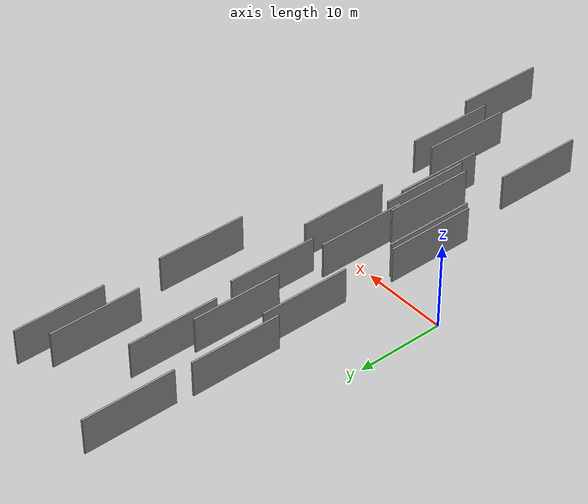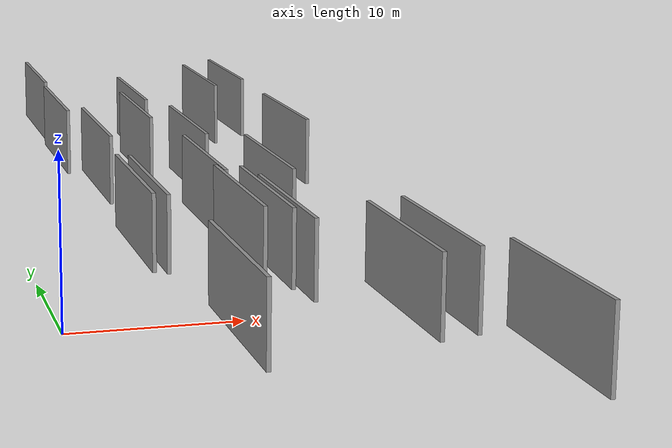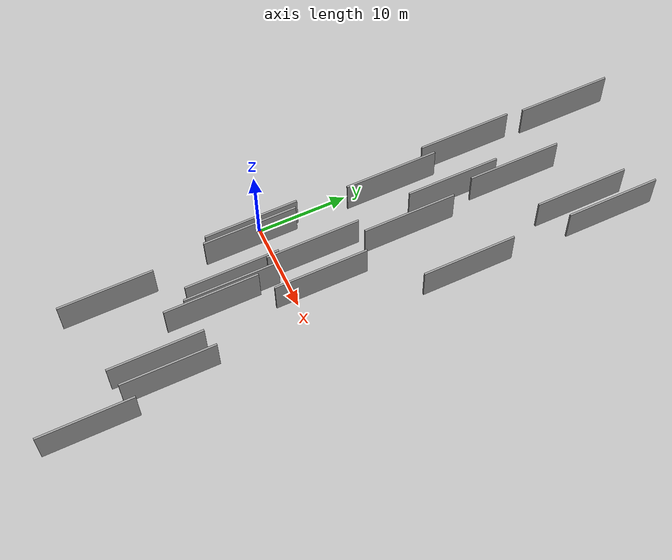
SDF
<sdf version="1.6">
 <world name="default">
  <scene>
   <sky><clouds><speed>12</speed></clouds></sky>
   <ambient>0.4 0.4 0.4 1</ambient>
   <background>0.7 0.7 0.7 1</background>
   <shadows>1</shadows>
  </scene>
  <gravity>0 0 -9.8066</gravity>
  <magnetic_field>6e-06 2.3e-05 -4.2e-05</magnetic_field>
  <physics default="0" name="default_physics" type="ode">
   <ode>
    <solver>
     <type>quick</type>
     <iters>10</iters>
     <sor>1.0</sor>
     <use_dynamic_moi_rescaling>0</use_dynamic_moi_rescaling>
    </solver>
    <constraints>
     <cfm>0</cfm>
     <erp>0.2</erp>
     <contact_max_correcting_vel>100</contact_max_correcting_vel>
     <contact_surface_layer>0.001</contact_surface_layer>
    </constraints>
   </ode>
   <max_step_size>0.004</max_step_size>
   <real_time_factor>1</real_time_factor>
   <real_time_update_rate>250</real_time_update_rate>
  </physics>
  <light name="sun" type="directional">
   <pose>0 0 10 0 0 0</pose>
   <diffuse>0.8 0.8 0.8 1</diffuse>
   <specular>0.2 0.2 0.2 1</specular>
   <attenuation>
    <range>1000</range>
    <constant>0.9</constant>
    <linear>0.01</linear>
    <quadratic>0.001</quadratic>
   </attenuation>
   <direction>-0.5 0.1 -0.9</direction>
  </light>
  <model name="grey_wall_1">
   <static>1</static>
   <pose>9.7893 12.7815 5.0 0.000000 0.000000 1.570796</pose>
   <link name="link">
    <pose>0 0 2.00 0 0 0</pose>
    <collision name="collision"><geometry><box><size>10.00 0.2 4.00</size></box></geometry></collision>
    <visual name="visual">
     <cast_shadows>0</cast_shadows>
     <geometry><box><size>10.00 0.2 4.00</size></box></geometry>
     <material>
      <script>
       <uri>model://grey_wall/materials/scripts</uri>
       <uri>model://grey_wall/materials/textures</uri>
       <name>vrc/grey_wall</name>
      </script>
     </material>
    </visual>
   </link>
  </model>
  <model name="grey_wall_2">
   <static>1</static>
   <pose>9.3896 -6.5230 5.0 0.000000 0.000000 1.570796</pose>
   <link name="link">
    <pose>0 0 2.00 0 0 0</pose>
    <collision name="collision"><geometry><box><size>10.00 0.2 4.00</size></box></geometry></collision>
    <visual name="visual">
     <cast_shadows>0</cast_shadows>
     <geometry><box><size>10.00 0.2 4.00</size></box></geometry>
     <material>
      <script>
       <uri>model://grey_wall/materials/scripts</uri>
       <uri>model://grey_wall/materials/textures</uri>
       <name>vrc/grey_wall</name>
      </script>
     </material>
    </visual>
   </link>
  </model>
  <model name="grey_wall_3">
   <static>1</static>
   <pose>3.4801 34.1478 5.0 0.000000 0.000000 1.570796</pose>
   <link name="link">
    <pose>0 0 2.00 0 0 0</pose>
    <collision name="collision"><geometry><box><size>10.00 0.2 4.00</size></box></geometry></collision>
    <visual name="visual">
     <cast_shadows>0</cast_shadows>
     <geometry><box><size>10.00 0.2 4.00</size></box></geometry>
     <material>
      <script>
       <uri>model://grey_wall/materials/scripts</uri>
       <uri>model://grey_wall/materials/textures</uri>
       <name>vrc/grey_wall</name>
      </script>
     </material>
    </visual>
   </link>
  </model>
  <model name="grey_wall_4">
   <static>1</static>
   <pose>3.6073 -1.9152 5.0 0.000000 0.000000 1.570796</pose>
   <link name="link">
    <pose>0 0 2.00 0 0 0</pose>
    <collision name="collision"><geometry><box><size>10.00 0.2 4.00</size></box></geometry></collision>
    <visual name="visual">
     <cast_shadows>0</cast_shadows>
     <geometry><box><size>10.00 0.2 4.00</size></box></geometry>
     <material>
      <script>
       <uri>model://grey_wall/materials/scripts</uri>
       <uri>model://grey_wall/materials/textures</uri>
       <name>vrc/grey_wall</name>
      </script>
     </material>
    </visual>
   </link>
  </model>
  <model name="grey_wall_5">
   <static>1</static>
   <pose>8.4005 2.7247 5.0 0.000000 0.000000 1.570796</pose>
   <link name="link">
    <pose>0 0 2.00 0 0 0</pose>
    <collision name="collision"><geometry><box><size>10.00 0.2 4.00</size></box></geometry></collision>
    <visual name="visual">
     <cast_shadows>0</cast_shadows>
     <geometry><box><size>10.00 0.2 4.00</size></box></geometry>
     <material>
      <script>
       <uri>model://grey_wall/materials/scripts</uri>
       <uri>model://grey_wall/materials/textures</uri>
       <name>vrc/grey_wall</name>
      </script>
     </material>
    </visual>
   </link>
  </model>
  <model name="grey_wall_6">
   <static>1</static>
   <pose>16.9744 32.1979 5.0 0.000000 0.000000 1.570796</pose>
   <link name="link">
    <pose>0 0 2.00 0 0 0</pose>
    <collision name="collision"><geometry><box><size>10.00 0.2 4.00</size></box></geometry></collision>
    <visual name="visual">
     <cast_shadows>0</cast_shadows>
     <geometry><box><size>10.00 0.2 4.00</size></box></geometry>
     <material>
      <script>
       <uri>model://grey_wall/materials/scripts</uri>
       <uri>model://grey_wall/materials/textures</uri>
       <name>vrc/grey_wall</name>
      </script>
     </material>
    </visual>
   </link>
  </model>
  <model name="grey_wall_7">
   <static>1</static>
   <pose>3.2066 22.4412 5.0 0.000000 0.000000 1.570796</pose>
   <link name="link">
    <pose>0 0 2.00 0 0 0</pose>
    <collision name="collision"><geometry><box><size>10.00 0.2 4.00</size></box></geometry></collision>
    <visual name="visual">
     <cast_shadows>0</cast_shadows>
     <geometry><box><size>10.00 0.2 4.00</size></box></geometry>
     <material>
      <script>
       <uri>model://grey_wall/materials/scripts</uri>
       <uri>model://grey_wall/materials/textures</uri>
       <name>vrc/grey_wall</name>
      </script>
     </material>
    </visual>
   </link>
  </model>
  <model name="grey_wall_8">
   <static>1</static>
   <pose>9.7941 -8.7824 5.0 0.000000 0.000000 1.570796</pose>
   <link name="link">
    <pose>0 0 2.00 0 0 0</pose>
    <collision name="collision"><geometry><box><size>10.00 0.2 4.00</size></box></geometry></collision>
    <visual name="visual">
     <cast_shadows>0</cast_shadows>
     <geometry><box><size>10.00 0.2 4.00</size></box></geometry>
     <material>
      <script>
       <uri>model://grey_wall/materials/scripts</uri>
       <uri>model://grey_wall/materials/textures</uri>
       <name>vrc/grey_wall</name>
      </script>
     </material>
    </visual>
   </link>
  </model>
  <model name="grey_wall_9">
   <static>1</static>
   <pose>14.5233 29.9534 5.0 0.000000 0.000000 1.570796</pose>
   <link name="link">
    <pose>0 0 2.00 0 0 0</pose>
    <collision name="collision"><geometry><box><size>10.00 0.2 4.00</size></box></geometry></collision>
    <visual name="visual">
     <cast_shadows>0</cast_shadows>
     <geometry><box><size>10.00 0.2 4.00</size></box></geometry>
     <material>
      <script>
       <uri>model://grey_wall/materials/scripts</uri>
       <uri>model://grey_wall/materials/textures</uri>
       <name>vrc/grey_wall</name>
      </script>
     </material>
    </visual>
   </link>
  </model>
  <model name="grey_wall_10">
   <static>1</static>
   <pose>16.9770 -24.3472 5.0 0.000000 0.000000 1.570796</pose>
   <link name="link">
    <pose>0 0 2.00 0 0 0</pose>
    <collision name="collision"><geometry><box><size>10.00 0.2 4.00</size></box></geometry></collision>
    <visual name="visual">
     <cast_shadows>0</cast_shadows>
     <geometry><box><size>10.00 0.2 4.00</size></box></geometry>
     <material>
      <script>
       <uri>model://grey_wall/materials/scripts</uri>
       <uri>model://grey_wall/materials/textures</uri>
       <name>vrc/grey_wall</name>
      </script>
     </material>
    </visual>
   </link>
  </model>
  <model name="grey_wall_11">
   <static>1</static>
   <pose>15.1796 -15.4007 5.0 0.000000 0.000000 1.570796</pose>
   <link name="link">
    <pose>0 0 2.00 0 0 0</pose>
    <collision name="collision"><geometry><box><size>10.00 0.2 4.00</size></box></geometry></collision>
    <visual name="visual">
     <cast_shadows>0</cast_shadows>
     <geometry><box><size>10.00 0.2 4.00</size></box></geometry>
     <material>
      <script>
       <uri>model://grey_wall/materials/scripts</uri>
       <uri>model://grey_wall/materials/textures</uri>
       <name>vrc/grey_wall</name>
      </script>
     </material>
    </visual>
   </link>
  </model>
  <model name="grey_wall_12">
   <static>1</static>
   <pose>8.7573 25.3072 5.0 0.000000 0.000000 1.570796</pose>
   <link name="link">
    <pose>0 0 2.00 0 0 0</pose>
    <collision name="collision"><geometry><box><size>10.00 0.2 4.00</size></box></geometry></collision>
    <visual name="visual">
     <cast_shadows>0</cast_shadows>
     <geometry><box><size>10.00 0.2 4.00</size></box></geometry>
     <material>
      <script>
       <uri>model://grey_wall/materials/scripts</uri>
       <uri>model://grey_wall/materials/textures</uri>
       <name>vrc/grey_wall</name>
      </script>
     </material>
    </visual>
   </link>
  </model>
  <model name="grey_wall_13">
   <static>1</static>
   <pose>8.1556 -5.9028 5.0 0.000000 0.000000 1.570796</pose>
   <link name="link">
    <pose>0 0 2.00 0 0 0</pose>
    <collision name="collision"><geometry><box><size>10.00 0.2 4.00</size></box></geometry></collision>
    <visual name="visual">
     <cast_shadows>0</cast_shadows>
     <geometry><box><size>10.00 0.2 4.00</size></box></geometry>
     <material>
      <script>
       <uri>model://grey_wall/materials/scripts</uri>
       <uri>model://grey_wall/materials/textures</uri>
       <name>vrc/grey_wall</name>
      </script>
     </material>
    </visual>
   </link>
  </model>
  <model name="grey_wall_14">
   <static>1</static>
   <pose>4.2770 13.3999 5.0 0.000000 0.000000 1.570796</pose>
   <link name="link">
    <pose>0 0 2.00 0 0 0</pose>
    <collision name="collision"><geometry><box><size>10.00 0.2 4.00</size></box></geometry></collision>
    <visual name="visual">
     <cast_shadows>0</cast_shadows>
     <geometry><box><size>10.00 0.2 4.00</size></box></geometry>
     <material>
      <script>
       <uri>model://grey_wall/materials/scripts</uri>
       <uri>model://grey_wall/materials/textures</uri>
       <name>vrc/grey_wall</name>
      </script>
     </material>
    </visual>
   </link>
  </model>
  <model name="grey_wall_15">
   <static>1</static>
   <pose>13.2383 -15.9345 5.0 0.000000 0.000000 1.570796</pose>
   <link name="link">
    <pose>0 0 2.00 0 0 0</pose>
    <collision name="collision"><geometry><box><size>10.00 0.2 4.00</size></box></geometry></collision>
    <visual name="visual">
     <cast_shadows>0</cast_shadows>
     <geometry><box><size>10.00 0.2 4.00</size></box></geometry>
     <material>
      <script>
       <uri>model://grey_wall/materials/scripts</uri>
       <uri>model://grey_wall/materials/textures</uri>
       <name>vrc/grey_wall</name>
      </script>
     </material>
    </visual>
   </link>
  </model>
  <model name="grey_wall_16">
   <static>1</static>
   <pose>7.7320 18.7458 5.0 0.000000 0.000000 1.570796</pose>
   <link name="link">
    <pose>0 0 2.00 0 0 0</pose>
    <collision name="collision"><geometry><box><size>10.00 0.2 4.00</size></box></geometry></collision>
    <visual name="visual">
     <cast_shadows>0</cast_shadows>
     <geometry><box><size>10.00 0.2 4.00</size></box></geometry>
     <material>
      <script>
       <uri>model://grey_wall/materials/scripts</uri>
       <uri>model://grey_wall/materials/textures</uri>
       <name>vrc/grey_wall</name>
      </script>
     </material>
    </visual>
   </link>
  </model>
  <model name="grey_wall_17">
   <static>1</static>
   <pose>16.7964 15.9017 5.0 0.000000 0.000000 1.570796</pose>
   <link name="link">
    <pose>0 0 2.00 0 0 0</pose>
    <collision name="collision"><geometry><box><size>10.00 0.2 4.00</size></box></geometry></collision>
    <visual name="visual">
     <cast_shadows>0</cast_shadows>
     <geometry><box><size>10.00 0.2 4.00</size></box></geometry>
     <material>
      <script>
       <uri>model://grey_wall/materials/scripts</uri>
       <uri>model://grey_wall/materials/textures</uri>
       <name>vrc/grey_wall</name>
      </script>
     </material>
    </visual>
   </link>
  </model>
  <model name="grey_wall_18">
   <static>1</static>
   <pose>4.2590 -2.3410 5.0 0.000000 0.000000 1.570796</pose>
   <link name="link">
    <pose>0 0 2.00 0 0 0</pose>
    <collision name="collision"><geometry><box><size>10.00 0.2 4.00</size></box></geometry></collision>
    <visual name="visual">
     <cast_shadows>0</cast_shadows>
     <geometry><box><size>10.00 0.2 4.00</size></box></geometry>
     <material>
      <script>
       <uri>model://grey_wall/materials/scripts</uri>
       <uri>model://grey_wall/materials/textures</uri>
       <name>vrc/grey_wall</name>
      </script>
     </material>
    </visual>
   </link>
  </model>
  <model name="grey_wall_19">
   <static>1</static>
   <pose>11.8951 2.0215 5.0 0.000000 0.000000 1.570796</pose>
   <link name="link">
    <pose>0 0 2.00 0 0 0</pose>
    <collision name="collision"><geometry><box><size>10.00 0.2 4.00</size></box></geometry></collision>
    <visual name="visual">
     <cast_shadows>0</cast_shadows>
     <geometry><box><size>10.00 0.2 4.00</size></box></geometry>
     <material>
      <script>
       <uri>model://grey_wall/materials/scripts</uri>
       <uri>model://grey_wall/materials/textures</uri>
       <name>vrc/grey_wall</name>
      </script>
     </material>
    </visual>
   </link>
  </model>
  <model name="grey_wall_20">
   <static>1</static>
   <pose>4.9788 -17.9588 5.0 0.000000 0.000000 1.570796</pose>
   <link name="link">
    <pose>0 0 2.00 0 0 0</pose>
    <collision name="collision"><geometry><box><size>10.00 0.2 4.00</size></box></geometry></collision>
    <visual name="visual">
     <cast_shadows>0</cast_shadows>
     <geometry><box><size>10.00 0.2 4.00</size></box></geometry>
     <material>
      <script>
       <uri>model://grey_wall/materials/scripts</uri>
       <uri>model://grey_wall/materials/textures</uri>
       <name>vrc/grey_wall</name>
      </script>
     </material>
    </visual>
   </link>
  </model>
 </world>
</sdf>
